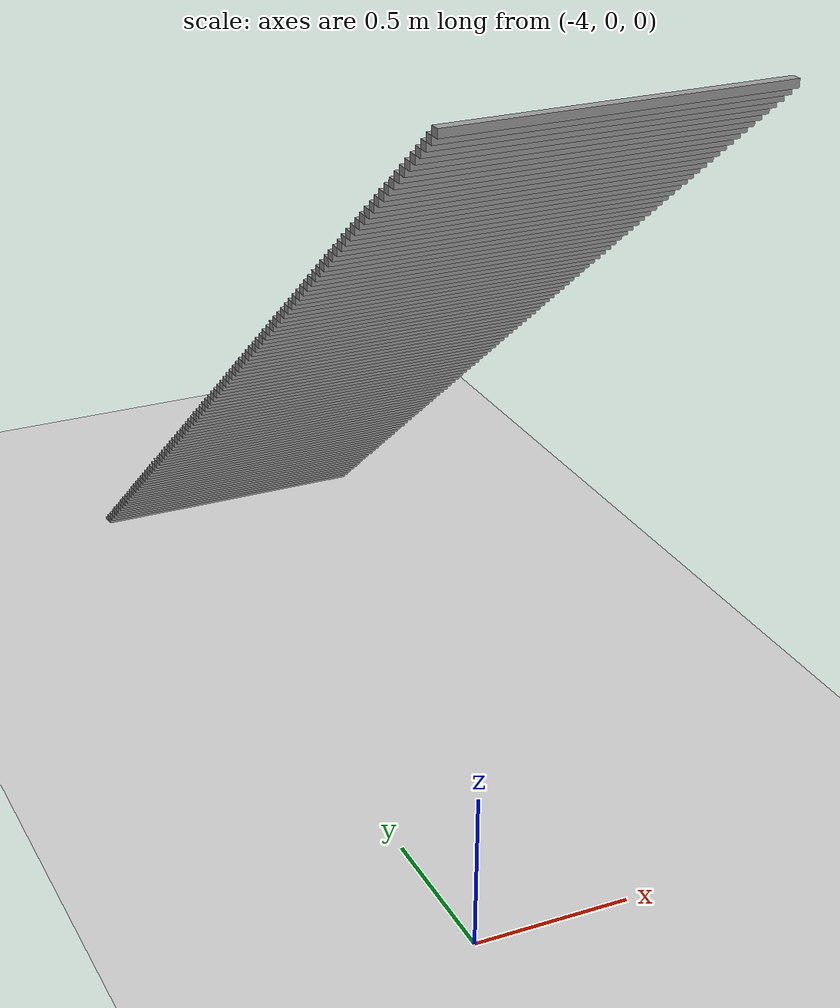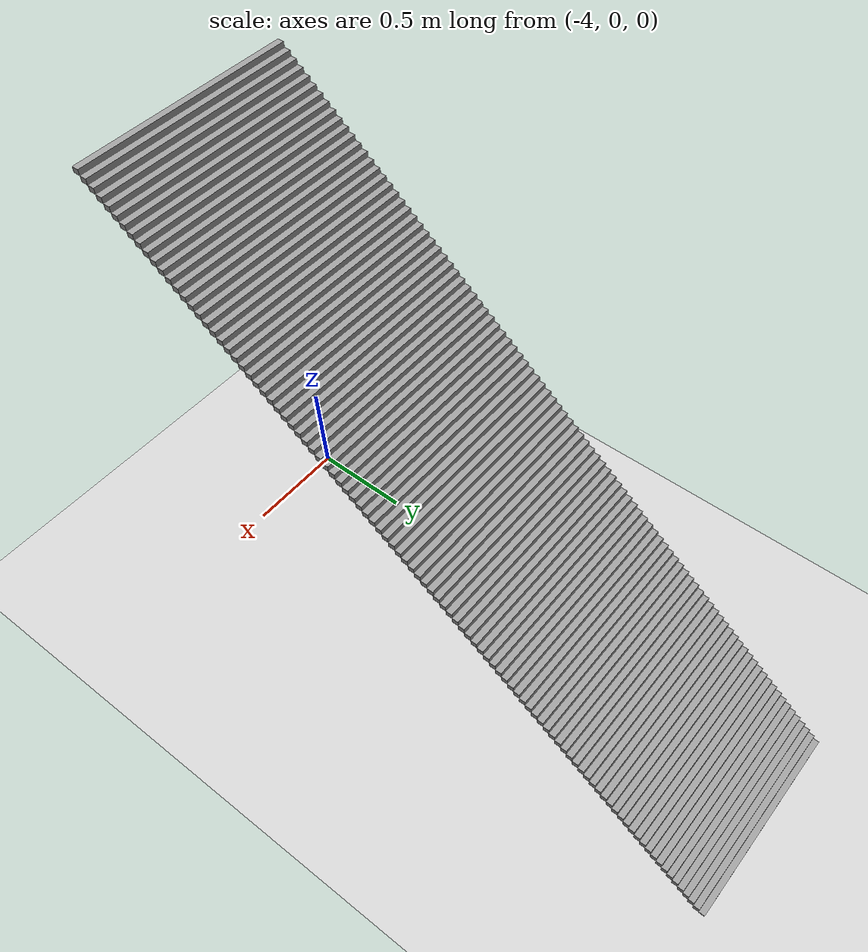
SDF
<sdf version="1.7">
 <world name="default">
  <model name="ground_plane">
   <static>1</static>
   <link name="link">
    <collision name="collision">
     <geometry><plane><normal>0 0 1</normal><size>100 100</size></plane></geometry>
     <surface>
      <contact><collide_bitmask>65535</collide_bitmask></contact>
      <friction><ode><mu>100</mu><mu2>50</mu2></ode></friction>
     </surface>
    </collision>
    <visual name="visual">
     <cast_shadows>0</cast_shadows>
     <geometry><plane><normal>0 0 1</normal><size>100 100</size></plane></geometry>
     <material>
      <script><uri>file://media/materials/scripts/gazebo.material</uri><name>Gazebo/Grey</name></script>
     </material>
    </visual>
   </link>
  </model>
  <model name="test2">
   <pose>0.709104 2.22387 -0.073744 0 -0 0</pose>
   <link name="Stairs_4">
    <visual name="Stairs_4_Visual_0">
     <pose>-4.35976 0.776132 0.0125 0 -0 0</pose>
     <geometry><box><size>1 0.03 0.025</size></box></geometry>
     <material>
      <script><uri>file://media/materials/scripts/gazebo.material</uri><name>Gazebo/Grey</name></script>
      <ambient>1 1 1 1</ambient>
     </material>
     <meta><layer>0</layer></meta>
    </visual>
    <collision name="Stairs_4_Collision_0">
     <geometry><box><size>1 0.03 0.025</size></box></geometry>
     <pose>-4.35976 0.776132 0.0125 0 -0 0</pose>
    </collision>
    <visual name="Stairs_4_Visual_1">
     <pose>-4.35976 0.746132 0.0375 0 -0 0</pose>
     <geometry><box><size>1 0.03 0.025</size></box></geometry>
     <material>
      <script><uri>file://media/materials/scripts/gazebo.material</uri><name>Gazebo/Grey</name></script>
      <ambient>1 1 1 1</ambient>
     </material>
     <meta><layer>0</layer></meta>
    </visual>
    <collision name="Stairs_4_Collision_1">
     <geometry><box><size>1 0.03 0.025</size></box></geometry>
     <pose>-4.35976 0.746132 0.0375 0 -0 0</pose>
    </collision>
    <visual name="Stairs_4_Visual_2">
     <pose>-4.35976 0.716132 0.0625 0 -0 0</pose>
     <geometry><box><size>1 0.03 0.025</size></box></geometry>
     <material>
      <script><uri>file://media/materials/scripts/gazebo.material</uri><name>Gazebo/Grey</name></script>
      <ambient>1 1 1 1</ambient>
     </material>
     <meta><layer>0</layer></meta>
    </visual>
    <collision name="Stairs_4_Collision_2">
     <geometry><box><size>1 0.03 0.025</size></box></geometry>
     <pose>-4.35976 0.716132 0.0625 0 -0 0</pose>
    </collision>
    <visual name="Stairs_4_Visual_3">
     <pose>-4.35976 0.686132 0.0875 0 -0 0</pose>
     <geometry><box><size>1 0.03 0.025</size></box></geometry>
     <material>
      <script><uri>file://media/materials/scripts/gazebo.material</uri><name>Gazebo/Grey</name></script>
      <ambient>1 1 1 1</ambient>
     </material>
     <meta><layer>0</layer></meta>
    </visual>
    <collision name="Stairs_4_Collision_3">
     <geometry><box><size>1 0.03 0.025</size></box></geometry>
     <pose>-4.35976 0.686132 0.0875 0 -0 0</pose>
    </collision>
    <visual name="Stairs_4_Visual_4">
     <pose>-4.35976 0.656132 0.1125 0 -0 0</pose>
     <geometry><box><size>1 0.03 0.025</size></box></geometry>
     <material>
      <script><uri>file://media/materials/scripts/gazebo.material</uri><name>Gazebo/Grey</name></script>
      <ambient>1 1 1 1</ambient>
     </material>
     <meta><layer>0</layer></meta>
    </visual>
    <collision name="Stairs_4_Collision_4">
     <geometry><box><size>1 0.03 0.025</size></box></geometry>
     <pose>-4.35976 0.656132 0.1125 0 -0 0</pose>
    </collision>
    <visual name="Stairs_4_Visual_5">
     <pose>-4.35976 0.626132 0.1375 0 -0 0</pose>
     <geometry><box><size>1 0.03 0.025</size></box></geometry>
     <material>
      <script><uri>file://media/materials/scripts/gazebo.material</uri><name>Gazebo/Grey</name></script>
      <ambient>1 1 1 1</ambient>
     </material>
     <meta><layer>0</layer></meta>
    </visual>
    <collision name="Stairs_4_Collision_5">
     <geometry><box><size>1 0.03 0.025</size></box></geometry>
     <pose>-4.35976 0.626132 0.1375 0 -0 0</pose>
    </collision>
    <visual name="Stairs_4_Visual_6">
     <pose>-4.35976 0.596132 0.1625 0 -0 0</pose>
     <geometry><box><size>1 0.03 0.025</size></box></geometry>
     <material>
      <script><uri>file://media/materials/scripts/gazebo.material</uri><name>Gazebo/Grey</name></script>
      <ambient>1 1 1 1</ambient>
     </material>
     <meta><layer>0</layer></meta>
    </visual>
    <collision name="Stairs_4_Collision_6">
     <geometry><box><size>1 0.03 0.025</size></box></geometry>
     <pose>-4.35976 0.596132 0.1625 0 -0 0</pose>
    </collision>
    <visual name="Stairs_4_Visual_7">
     <pose>-4.35976 0.566132 0.1875 0 -0 0</pose>
     <geometry><box><size>1 0.03 0.025</size></box></geometry>
     <material>
      <script><uri>file://media/materials/scripts/gazebo.material</uri><name>Gazebo/Grey</name></script>
      <ambient>1 1 1 1</ambient>
     </material>
     <meta><layer>0</layer></meta>
    </visual>
    <collision name="Stairs_4_Collision_7">
     <geometry><box><size>1 0.03 0.025</size></box></geometry>
     <pose>-4.35976 0.566132 0.1875 0 -0 0</pose>
    </collision>
    <visual name="Stairs_4_Visual_8">
     <pose>-4.35976 0.536132 0.2125 0 -0 0</pose>
     <geometry><box><size>1 0.03 0.025</size></box></geometry>
     <material>
      <script><uri>file://media/materials/scripts/gazebo.material</uri><name>Gazebo/Grey</name></script>
      <ambient>1 1 1 1</ambient>
     </material>
     <meta><layer>0</layer></meta>
    </visual>
    <collision name="Stairs_4_Collision_8">
     <geometry><box><size>1 0.03 0.025</size></box></geometry>
     <pose>-4.35976 0.536132 0.2125 0 -0 0</pose>
    </collision>
    <visual name="Stairs_4_Visual_9">
     <pose>-4.35976 0.506132 0.2375 0 -0 0</pose>
     <geometry><box><size>1 0.03 0.025</size></box></geometry>
     <material>
      <script><uri>file://media/materials/scripts/gazebo.material</uri><name>Gazebo/Grey</name></script>
      <ambient>1 1 1 1</ambient>
     </material>
     <meta><layer>0</layer></meta>
    </visual>
    <collision name="Stairs_4_Collision_9">
     <geometry><box><size>1 0.03 0.025</size></box></geometry>
     <pose>-4.35976 0.506132 0.2375 0 -0 0</pose>
    </collision>
    <visual name="Stairs_4_Visual_10">
     <pose>-4.35976 0.476132 0.2625 0 -0 0</pose>
     <geometry><box><size>1 0.03 0.025</size></box></geometry>
     <material>
      <script><uri>file://media/materials/scripts/gazebo.material</uri><name>Gazebo/Grey</name></script>
      <ambient>1 1 1 1</ambient>
     </material>
     <meta><layer>0</layer></meta>
    </visual>
    <collision name="Stairs_4_Collision_10">
     <geometry><box><size>1 0.03 0.025</size></box></geometry>
     <pose>-4.35976 0.476132 0.2625 0 -0 0</pose>
    </collision>
    <visual name="Stairs_4_Visual_11">
     <pose>-4.35976 0.446132 0.2875 0 -0 0</pose>
     <geometry><box><size>1 0.03 0.025</size></box></geometry>
     <material>
      <script><uri>file://media/materials/scripts/gazebo.material</uri><name>Gazebo/Grey</name></script>
      <ambient>1 1 1 1</ambient>
     </material>
     <meta><layer>0</layer></meta>
    </visual>
    <collision name="Stairs_4_Collision_11">
     <geometry><box><size>1 0.03 0.025</size></box></geometry>
     <pose>-4.35976 0.446132 0.2875 0 -0 0</pose>
    </collision>
    <visual name="Stairs_4_Visual_12">
     <pose>-4.35976 0.416132 0.3125 0 -0 0</pose>
     <geometry><box><size>1 0.03 0.025</size></box></geometry>
     <material>
      <script><uri>file://media/materials/scripts/gazebo.material</uri><name>Gazebo/Grey</name></script>
      <ambient>1 1 1 1</ambient>
     </material>
     <meta><layer>0</layer></meta>
    </visual>
    <collision name="Stairs_4_Collision_12">
     <geometry><box><size>1 0.03 0.025</size></box></geometry>
     <pose>-4.35976 0.416132 0.3125 0 -0 0</pose>
    </collision>
    <visual name="Stairs_4_Visual_13">
     <pose>-4.35976 0.386132 0.3375 0 -0 0</pose>
     <geometry><box><size>1 0.03 0.025</size></box></geometry>
     <material>
      <script><uri>file://media/materials/scripts/gazebo.material</uri><name>Gazebo/Grey</name></script>
      <ambient>1 1 1 1</ambient>
     </material>
     <meta><layer>0</layer></meta>
    </visual>
    <collision name="Stairs_4_Collision_13">
     <geometry><box><size>1 0.03 0.025</size></box></geometry>
     <pose>-4.35976 0.386132 0.3375 0 -0 0</pose>
    </collision>
    <visual name="Stairs_4_Visual_14">
     <pose>-4.35976 0.356132 0.3625 0 -0 0</pose>
     <geometry><box><size>1 0.03 0.025</size></box></geometry>
     <material>
      <script><uri>file://media/materials/scripts/gazebo.material</uri><name>Gazebo/Grey</name></script>
      <ambient>1 1 1 1</ambient>
     </material>
     <meta><layer>0</layer></meta>
    </visual>
    <collision name="Stairs_4_Collision_14">
     <geometry><box><size>1 0.03 0.025</size></box></geometry>
     <pose>-4.35976 0.356132 0.3625 0 -0 0</pose>
    </collision>
    <visual name="Stairs_4_Visual_15">
     <pose>-4.35976 0.326132 0.3875 0 -0 0</pose>
     <geometry><box><size>1 0.03 0.025</size></box></geometry>
     <material>
      <script><uri>file://media/materials/scripts/gazebo.material</uri><name>Gazebo/Grey</name></script>
      <ambient>1 1 1 1</ambient>
     </material>
     <meta><layer>0</layer></meta>
    </visual>
    <collision name="Stairs_4_Collision_15">
     <geometry><box><size>1 0.03 0.025</size></box></geometry>
     <pose>-4.35976 0.326132 0.3875 0 -0 0</pose>
    </collision>
    <visual name="Stairs_4_Visual_16">
     <pose>-4.35976 0.296132 0.4125 0 -0 0</pose>
     <geometry><box><size>1 0.03 0.025</size></box></geometry>
     <material>
      <script><uri>file://media/materials/scripts/gazebo.material</uri><name>Gazebo/Grey</name></script>
      <ambient>1 1 1 1</ambient>
     </material>
     <meta><layer>0</layer></meta>
    </visual>
    <collision name="Stairs_4_Collision_16">
     <geometry><box><size>1 0.03 0.025</size></box></geometry>
     <pose>-4.35976 0.296132 0.4125 0 -0 0</pose>
    </collision>
    <visual name="Stairs_4_Visual_17">
     <pose>-4.35976 0.266132 0.4375 0 -0 0</pose>
     <geometry><box><size>1 0.03 0.025</size></box></geometry>
     <material>
      <script><uri>file://media/materials/scripts/gazebo.material</uri><name>Gazebo/Grey</name></script>
      <ambient>1 1 1 1</ambient>
     </material>
     <meta><layer>0</layer></meta>
    </visual>
    <collision name="Stairs_4_Collision_17">
     <geometry><box><size>1 0.03 0.025</size></box></geometry>
     <pose>-4.35976 0.266132 0.4375 0 -0 0</pose>
    </collision>
    <visual name="Stairs_4_Visual_18">
     <pose>-4.35976 0.236132 0.4625 0 -0 0</pose>
     <geometry><box><size>1 0.03 0.025</size></box></geometry>
     <material>
      <script><uri>file://media/materials/scripts/gazebo.material</uri><name>Gazebo/Grey</name></script>
      <ambient>1 1 1 1</ambient>
     </material>
     <meta><layer>0</layer></meta>
    </visual>
    <collision name="Stairs_4_Collision_18">
     <geometry><box><size>1 0.03 0.025</size></box></geometry>
     <pose>-4.35976 0.236132 0.4625 0 -0 0</pose>
    </collision>
    <visual name="Stairs_4_Visual_19">
     <pose>-4.35976 0.206132 0.4875 0 -0 0</pose>
     <geometry><box><size>1 0.03 0.025</size></box></geometry>
     <material>
      <script><uri>file://media/materials/scripts/gazebo.material</uri><name>Gazebo/Grey</name></script>
      <ambient>1 1 1 1</ambient>
     </material>
     <meta><layer>0</layer></meta>
    </visual>
    <collision name="Stairs_4_Collision_19">
     <geometry><box><size>1 0.03 0.025</size></box></geometry>
     <pose>-4.35976 0.206132 0.4875 0 -0 0</pose>
    </collision>
    <visual name="Stairs_4_Visual_20">
     <pose>-4.35976 0.176132 0.5125 0 -0 0</pose>
     <geometry><box><size>1 0.03 0.025</size></box></geometry>
     <material>
      <script><uri>file://media/materials/scripts/gazebo.material</uri><name>Gazebo/Grey</name></script>
      <ambient>1 1 1 1</ambient>
     </material>
     <meta><layer>0</layer></meta>
    </visual>
    <collision name="Stairs_4_Collision_20">
     <geometry><box><size>1 0.03 0.025</size></box></geometry>
     <pose>-4.35976 0.176132 0.5125 0 -0 0</pose>
    </collision>
    <visual name="Stairs_4_Visual_21">
     <pose>-4.35976 0.146132 0.5375 0 -0 0</pose>
     <geometry><box><size>1 0.03 0.025</size></box></geometry>
     <material>
      <script><uri>file://media/materials/scripts/gazebo.material</uri><name>Gazebo/Grey</name></script>
      <ambient>1 1 1 1</ambient>
     </material>
     <meta><layer>0</layer></meta>
    </visual>
    <collision name="Stairs_4_Collision_21">
     <geometry><box><size>1 0.03 0.025</size></box></geometry>
     <pose>-4.35976 0.146132 0.5375 0 -0 0</pose>
    </collision>
    <visual name="Stairs_4_Visual_22">
     <pose>-4.35976 0.116132 0.5625 0 -0 0</pose>
     <geometry><box><size>1 0.03 0.025</size></box></geometry>
     <material>
      <script><uri>file://media/materials/scripts/gazebo.material</uri><name>Gazebo/Grey</name></script>
      <ambient>1 1 1 1</ambient>
     </material>
     <meta><layer>0</layer></meta>
    </visual>
    <collision name="Stairs_4_Collision_22">
     <geometry><box><size>1 0.03 0.025</size></box></geometry>
     <pose>-4.35976 0.116132 0.5625 0 -0 0</pose>
    </collision>
    <visual name="Stairs_4_Visual_23">
     <pose>-4.35976 0.086132 0.5875 0 -0 0</pose>
     <geometry><box><size>1 0.03 0.025</size></box></geometry>
     <material>
      <script><uri>file://media/materials/scripts/gazebo.material</uri><name>Gazebo/Grey</name></script>
      <ambient>1 1 1 1</ambient>
     </material>
     <meta><layer>0</layer></meta>
    </visual>
    <collision name="Stairs_4_Collision_23">
     <geometry><box><size>1 0.03 0.025</size></box></geometry>
     <pose>-4.35976 0.086132 0.5875 0 -0 0</pose>
    </collision>
    <visual name="Stairs_4_Visual_24">
     <pose>-4.35976 0.056132 0.6125 0 -0 0</pose>
     <geometry><box><size>1 0.03 0.025</size></box></geometry>
     <material>
      <script><uri>file://media/materials/scripts/gazebo.material</uri><name>Gazebo/Grey</name></script>
      <ambient>1 1 1 1</ambient>
     </material>
     <meta><layer>0</layer></meta>
    </visual>
    <collision name="Stairs_4_Collision_24">
     <geometry><box><size>1 0.03 0.025</size></box></geometry>
     <pose>-4.35976 0.056132 0.6125 0 -0 0</pose>
    </collision>
    <visual name="Stairs_4_Visual_25">
     <pose>-4.35976 0.026132 0.6375 0 -0 0</pose>
     <geometry><box><size>1 0.03 0.025</size></box></geometry>
     <material>
      <script><uri>file://media/materials/scripts/gazebo.material</uri><name>Gazebo/Grey</name></script>
      <ambient>1 1 1 1</ambient>
     </material>
     <meta><layer>0</layer></meta>
    </visual>
    <collision name="Stairs_4_Collision_25">
     <geometry><box><size>1 0.03 0.025</size></box></geometry>
     <pose>-4.35976 0.026132 0.6375 0 -0 0</pose>
    </collision>
    <visual name="Stairs_4_Visual_26">
     <pose>-4.35976 -0.003868 0.6625 0 -0 0</pose>
     <geometry><box><size>1 0.03 0.025</size></box></geometry>
     <material>
      <script><uri>file://media/materials/scripts/gazebo.material</uri><name>Gazebo/Grey</name></script>
      <ambient>1 1 1 1</ambient>
     </material>
     <meta><layer>0</layer></meta>
    </visual>
    <collision name="Stairs_4_Collision_26">
     <geometry><box><size>1 0.03 0.025</size></box></geometry>
     <pose>-4.35976 -0.003868 0.6625 0 -0 0</pose>
    </collision>
    <visual name="Stairs_4_Visual_27">
     <pose>-4.35976 -0.033868 0.6875 0 -0 0</pose>
     <geometry><box><size>1 0.03 0.025</size></box></geometry>
     <material>
      <script><uri>file://media/materials/scripts/gazebo.material</uri><name>Gazebo/Grey</name></script>
      <ambient>1 1 1 1</ambient>
     </material>
     <meta><layer>0</layer></meta>
    </visual>
    <collision name="Stairs_4_Collision_27">
     <geometry><box><size>1 0.03 0.025</size></box></geometry>
     <pose>-4.35976 -0.033868 0.6875 0 -0 0</pose>
    </collision>
    <visual name="Stairs_4_Visual_28">
     <pose>-4.35976 -0.063868 0.7125 0 -0 0</pose>
     <geometry><box><size>1 0.03 0.025</size></box></geometry>
     <material>
      <script><uri>file://media/materials/scripts/gazebo.material</uri><name>Gazebo/Grey</name></script>
      <ambient>1 1 1 1</ambient>
     </material>
     <meta><layer>0</layer></meta>
    </visual>
    <collision name="Stairs_4_Collision_28">
     <geometry><box><size>1 0.03 0.025</size></box></geometry>
     <pose>-4.35976 -0.063868 0.7125 0 -0 0</pose>
    </collision>
    <visual name="Stairs_4_Visual_29">
     <pose>-4.35976 -0.093868 0.7375 0 -0 0</pose>
     <geometry><box><size>1 0.03 0.025</size></box></geometry>
     <material>
      <script><uri>file://media/materials/scripts/gazebo.material</uri><name>Gazebo/Grey</name></script>
      <ambient>1 1 1 1</ambient>
     </material>
     <meta><layer>0</layer></meta>
    </visual>
    <collision name="Stairs_4_Collision_29">
     <geometry><box><size>1 0.03 0.025</size></box></geometry>
     <pose>-4.35976 -0.093868 0.7375 0 -0 0</pose>
    </collision>
    <visual name="Stairs_4_Visual_30">
     <pose>-4.35976 -0.123868 0.7625 0 -0 0</pose>
     <geometry><box><size>1 0.03 0.025</size></box></geometry>
     <material>
      <script><uri>file://media/materials/scripts/gazebo.material</uri><name>Gazebo/Grey</name></script>
      <ambient>1 1 1 1</ambient>
     </material>
     <meta><layer>0</layer></meta>
    </visual>
    <collision name="Stairs_4_Collision_30">
     <geometry><box><size>1 0.03 0.025</size></box></geometry>
     <pose>-4.35976 -0.123868 0.7625 0 -0 0</pose>
    </collision>
    <visual name="Stairs_4_Visual_31">
     <pose>-4.35976 -0.153868 0.7875 0 -0 0</pose>
     <geometry><box><size>1 0.03 0.025</size></box></geometry>
     <material>
      <script><uri>file://media/materials/scripts/gazebo.material</uri><name>Gazebo/Grey</name></script>
      <ambient>1 1 1 1</ambient>
     </material>
     <meta><layer>0</layer></meta>
    </visual>
    <collision name="Stairs_4_Collision_31">
     <geometry><box><size>1 0.03 0.025</size></box></geometry>
     <pose>-4.35976 -0.153868 0.7875 0 -0 0</pose>
    </collision>
    <visual name="Stairs_4_Visual_32">
     <pose>-4.35976 -0.183868 0.8125 0 -0 0</pose>
     <geometry><box><size>1 0.03 0.025</size></box></geometry>
     <material>
      <script><uri>file://media/materials/scripts/gazebo.material</uri><name>Gazebo/Grey</name></script>
      <ambient>1 1 1 1</ambient>
     </material>
     <meta><layer>0</layer></meta>
    </visual>
    <collision name="Stairs_4_Collision_32">
     <geometry><box><size>1 0.03 0.025</size></box></geometry>
     <pose>-4.35976 -0.183868 0.8125 0 -0 0</pose>
    </collision>
    <visual name="Stairs_4_Visual_33">
     <pose>-4.35976 -0.213868 0.8375 0 -0 0</pose>
     <geometry><box><size>1 0.03 0.025</size></box></geometry>
     <material>
      <script><uri>file://media/materials/scripts/gazebo.material</uri><name>Gazebo/Grey</name></script>
      <ambient>1 1 1 1</ambient>
     </material>
     <meta><layer>0</layer></meta>
    </visual>
    <collision name="Stairs_4_Collision_33">
     <geometry><box><size>1 0.03 0.025</size></box></geometry>
     <pose>-4.35976 -0.213868 0.8375 0 -0 0</pose>
    </collision>
    <visual name="Stairs_4_Visual_34">
     <pose>-4.35976 -0.243868 0.8625 0 -0 0</pose>
     <geometry><box><size>1 0.03 0.025</size></box></geometry>
     <material>
      <script><uri>file://media/materials/scripts/gazebo.material</uri><name>Gazebo/Grey</name></script>
      <ambient>1 1 1 1</ambient>
     </material>
     <meta><layer>0</layer></meta>
    </visual>
    <collision name="Stairs_4_Collision_34">
     <geometry><box><size>1 0.03 0.025</size></box></geometry>
     <pose>-4.35976 -0.243868 0.8625 0 -0 0</pose>
    </collision>
    <visual name="Stairs_4_Visual_35">
     <pose>-4.35976 -0.273868 0.8875 0 -0 0</pose>
     <geometry><box><size>1 0.03 0.025</size></box></geometry>
     <material>
      <script><uri>file://media/materials/scripts/gazebo.material</uri><name>Gazebo/Grey</name></script>
      <ambient>1 1 1 1</ambient>
     </material>
     <meta><layer>0</layer></meta>
    </visual>
    <collision name="Stairs_4_Collision_35">
     <geometry><box><size>1 0.03 0.025</size></box></geometry>
     <pose>-4.35976 -0.273868 0.8875 0 -0 0</pose>
    </collision>
    <visual name="Stairs_4_Visual_36">
     <pose>-4.35976 -0.303868 0.9125 0 -0 0</pose>
     <geometry><box><size>1 0.03 0.025</size></box></geometry>
     <material>
      <script><uri>file://media/materials/scripts/gazebo.material</uri><name>Gazebo/Grey</name></script>
      <ambient>1 1 1 1</ambient>
     </material>
     <meta><layer>0</layer></meta>
    </visual>
    <collision name="Stairs_4_Collision_36">
     <geometry><box><size>1 0.03 0.025</size></box></geometry>
     <pose>-4.35976 -0.303868 0.9125 0 -0 0</pose>
    </collision>
    <visual name="Stairs_4_Visual_37">
     <pose>-4.35976 -0.333868 0.9375 0 -0 0</pose>
     <geometry><box><size>1 0.03 0.025</size></box></geometry>
     <material>
      <script><uri>file://media/materials/scripts/gazebo.material</uri><name>Gazebo/Grey</name></script>
      <ambient>1 1 1 1</ambient>
     </material>
     <meta><layer>0</layer></meta>
    </visual>
    <collision name="Stairs_4_Collision_37">
     <geometry><box><size>1 0.03 0.025</size></box></geometry>
     <pose>-4.35976 -0.333868 0.9375 0 -0 0</pose>
    </collision>
    <visual name="Stairs_4_Visual_38">
     <pose>-4.35976 -0.363868 0.9625 0 -0 0</pose>
     <geometry><box><size>1 0.03 0.025</size></box></geometry>
     <material>
      <script><uri>file://media/materials/scripts/gazebo.material</uri><name>Gazebo/Grey</name></script>
      <ambient>1 1 1 1</ambient>
     </material>
     <meta><layer>0</layer></meta>
    </visual>
    <collision name="Stairs_4_Collision_38">
     <geometry><box><size>1 0.03 0.025</size></box></geometry>
     <pose>-4.35976 -0.363868 0.9625 0 -0 0</pose>
    </collision>
    <visual name="Stairs_4_Visual_39">
     <pose>-4.35976 -0.393868 0.9875 0 -0 0</pose>
     <geometry><box><size>1 0.03 0.025</size></box></geometry>
     <material>
      <script><uri>file://media/materials/scripts/gazebo.material</uri><name>Gazebo/Grey</name></script>
      <ambient>1 1 1 1</ambient>
     </material>
     <meta><layer>0</layer></meta>
    </visual>
    <collision name="Stairs_4_Collision_39">
     <geometry><box><size>1 0.03 0.025</size></box></geometry>
     <pose>-4.35976 -0.393868 0.9875 0 -0 0</pose>
    </collision>
    <visual name="Stairs_4_Visual_40">
     <pose>-4.35976 -0.423868 1.0125 0 -0 0</pose>
     <geometry><box><size>1 0.03 0.025</size></box></geometry>
     <material>
      <script><uri>file://media/materials/scripts/gazebo.material</uri><name>Gazebo/Grey</name></script>
      <ambient>1 1 1 1</ambient>
     </material>
     <meta><layer>0</layer></meta>
    </visual>
    <collision name="Stairs_4_Collision_40">
     <geometry><box><size>1 0.03 0.025</size></box></geometry>
     <pose>-4.35976 -0.423868 1.0125 0 -0 0</pose>
    </collision>
    <visual name="Stairs_4_Visual_41">
     <pose>-4.35976 -0.453868 1.0375 0 -0 0</pose>
     <geometry><box><size>1 0.03 0.025</size></box></geometry>
     <material>
      <script><uri>file://media/materials/scripts/gazebo.material</uri><name>Gazebo/Grey</name></script>
      <ambient>1 1 1 1</ambient>
     </material>
     <meta><layer>0</layer></meta>
    </visual>
    <collision name="Stairs_4_Collision_41">
     <geometry><box><size>1 0.03 0.025</size></box></geometry>
     <pose>-4.35976 -0.453868 1.0375 0 -0 0</pose>
    </collision>
    <visual name="Stairs_4_Visual_42">
     <pose>-4.35976 -0.483868 1.0625 0 -0 0</pose>
     <geometry><box><size>1 0.03 0.025</size></box></geometry>
     <material>
      <script><uri>file://media/materials/scripts/gazebo.material</uri><name>Gazebo/Grey</name></script>
      <ambient>1 1 1 1</ambient>
     </material>
     <meta><layer>0</layer></meta>
    </visual>
    <collision name="Stairs_4_Collision_42">
     <geometry><box><size>1 0.03 0.025</size></box></geometry>
     <pose>-4.35976 -0.483868 1.0625 0 -0 0</pose>
    </collision>
    <visual name="Stairs_4_Visual_43">
     <pose>-4.35976 -0.513868 1.0875 0 -0 0</pose>
     <geometry><box><size>1 0.03 0.025</size></box></geometry>
     <material>
      <script><uri>file://media/materials/scripts/gazebo.material</uri><name>Gazebo/Grey</name></script>
      <ambient>1 1 1 1</ambient>
     </material>
     <meta><layer>0</layer></meta>
    </visual>
    <collision name="Stairs_4_Collision_43">
     <geometry><box><size>1 0.03 0.025</size></box></geometry>
     <pose>-4.35976 -0.513868 1.0875 0 -0 0</pose>
    </collision>
    <visual name="Stairs_4_Visual_44">
     <pose>-4.35976 -0.543868 1.1125 0 -0 0</pose>
     <geometry><box><size>1 0.03 0.025</size></box></geometry>
     <material>
      <script><uri>file://media/materials/scripts/gazebo.material</uri><name>Gazebo/Grey</name></script>
      <ambient>1 1 1 1</ambient>
     </material>
     <meta><layer>0</layer></meta>
    </visual>
    <collision name="Stairs_4_Collision_44">
     <geometry><box><size>1 0.03 0.025</size></box></geometry>
     <pose>-4.35976 -0.543868 1.1125 0 -0 0</pose>
    </collision>
    <visual name="Stairs_4_Visual_45">
     <pose>-4.35976 -0.573868 1.1375 0 -0 0</pose>
     <geometry><box><size>1 0.03 0.025</size></box></geometry>
     <material>
      <script><uri>file://media/materials/scripts/gazebo.material</uri><name>Gazebo/Grey</name></script>
      <ambient>1 1 1 1</ambient>
     </material>
     <meta><layer>0</layer></meta>
    </visual>
    <collision name="Stairs_4_Collision_45">
     <geometry><box><size>1 0.03 0.025</size></box></geometry>
     <pose>-4.35976 -0.573868 1.1375 0 -0 0</pose>
    </collision>
    <visual name="Stairs_4_Visual_46">
     <pose>-4.35976 -0.603868 1.1625 0 -0 0</pose>
     <geometry><box><size>1 0.03 0.025</size></box></geometry>
     <material>
      <script><uri>file://media/materials/scripts/gazebo.material</uri><name>Gazebo/Grey</name></script>
      <ambient>1 1 1 1</ambient>
     </material>
     <meta><layer>0</layer></meta>
    </visual>
    <collision name="Stairs_4_Collision_46">
     <geometry><box><size>1 0.03 0.025</size></box></geometry>
     <pose>-4.35976 -0.603868 1.1625 0 -0 0</pose>
    </collision>
    <visual name="Stairs_4_Visual_47">
     <pose>-4.35976 -0.633868 1.1875 0 -0 0</pose>
     <geometry><box><size>1 0.03 0.025</size></box></geometry>
     <material>
      <script><uri>file://media/materials/scripts/gazebo.material</uri><name>Gazebo/Grey</name></script>
      <ambient>1 1 1 1</ambient>
     </material>
     <meta><layer>0</layer></meta>
    </visual>
    <collision name="Stairs_4_Collision_47">
     <geometry><box><size>1 0.03 0.025</size></box></geometry>
     <pose>-4.35976 -0.633868 1.1875 0 -0 0</pose>
    </collision>
    <visual name="Stairs_4_Visual_48">
     <pose>-4.35976 -0.663868 1.2125 0 -0 0</pose>
     <geometry><box><size>1 0.03 0.025</size></box></geometry>
     <material>
      <script><uri>file://media/materials/scripts/gazebo.material</uri><name>Gazebo/Grey</name></script>
      <ambient>1 1 1 1</ambient>
     </material>
     <meta><layer>0</layer></meta>
    </visual>
    <collision name="Stairs_4_Collision_48">
     <geometry><box><size>1 0.03 0.025</size></box></geometry>
     <pose>-4.35976 -0.663868 1.2125 0 -0 0</pose>
    </collision>
    <visual name="Stairs_4_Visual_49">
     <pose>-4.35976 -0.693868 1.2375 0 -0 0</pose>
     <geometry><box><size>1 0.03 0.025</size></box></geometry>
     <material>
      <script><uri>file://media/materials/scripts/gazebo.material</uri><name>Gazebo/Grey</name></script>
      <ambient>1 1 1 1</ambient>
     </material>
     <meta><layer>0</layer></meta>
    </visual>
    <collision name="Stairs_4_Collision_49">
     <geometry><box><size>1 0.03 0.025</size></box></geometry>
     <pose>-4.35976 -0.693868 1.2375 0 -0 0</pose>
    </collision>
    <visual name="Stairs_4_Visual_50">
     <pose>-4.35976 -0.723868 1.2625 0 -0 0</pose>
     <geometry><box><size>1 0.03 0.025</size></box></geometry>
     <material>
      <script><uri>file://media/materials/scripts/gazebo.material</uri><name>Gazebo/Grey</name></script>
      <ambient>1 1 1 1</ambient>
     </material>
     <meta><layer>0</layer></meta>
    </visual>
    <collision name="Stairs_4_Collision_50">
     <geometry><box><size>1 0.03 0.025</size></box></geometry>
     <pose>-4.35976 -0.723868 1.2625 0 -0 0</pose>
    </collision>
    <visual name="Stairs_4_Visual_51">
     <pose>-4.35976 -0.753868 1.2875 0 -0 0</pose>
     <geometry><box><size>1 0.03 0.025</size></box></geometry>
     <material>
      <script><uri>file://media/materials/scripts/gazebo.material</uri><name>Gazebo/Grey</name></script>
      <ambient>1 1 1 1</ambient>
     </material>
     <meta><layer>0</layer></meta>
    </visual>
    <collision name="Stairs_4_Collision_51">
     <geometry><box><size>1 0.03 0.025</size></box></geometry>
     <pose>-4.35976 -0.753868 1.2875 0 -0 0</pose>
    </collision>
    <visual name="Stairs_4_Visual_52">
     <pose>-4.35976 -0.783868 1.3125 0 -0 0</pose>
     <geometry><box><size>1 0.03 0.025</size></box></geometry>
     <material>
      <script><uri>file://media/materials/scripts/gazebo.material</uri><name>Gazebo/Grey</name></script>
      <ambient>1 1 1 1</ambient>
     </material>
     <meta><layer>0</layer></meta>
    </visual>
    <collision name="Stairs_4_Collision_52">
     <geometry><box><size>1 0.03 0.025</size></box></geometry>
     <pose>-4.35976 -0.783868 1.3125 0 -0 0</pose>
    </collision>
    <visual name="Stairs_4_Visual_53">
     <pose>-4.35976 -0.813868 1.3375 0 -0 0</pose>
     <geometry><box><size>1 0.03 0.025</size></box></geometry>
     <material>
      <script><uri>file://media/materials/scripts/gazebo.material</uri><name>Gazebo/Grey</name></script>
      <ambient>1 1 1 1</ambient>
     </material>
     <meta><layer>0</layer></meta>
    </visual>
    <collision name="Stairs_4_Collision_53">
     <geometry><box><size>1 0.03 0.025</size></box></geometry>
     <pose>-4.35976 -0.813868 1.3375 0 -0 0</pose>
    </collision>
    <visual name="Stairs_4_Visual_54">
     <pose>-4.35976 -0.843868 1.3625 0 -0 0</pose>
     <geometry><box><size>1 0.03 0.025</size></box></geometry>
     <material>
      <script><uri>file://media/materials/scripts/gazebo.material</uri><name>Gazebo/Grey</name></script>
      <ambient>1 1 1 1</ambient>
     </material>
     <meta><layer>0</layer></meta>
    </visual>
    <collision name="Stairs_4_Collision_54">
     <geometry><box><size>1 0.03 0.025</size></box></geometry>
     <pose>-4.35976 -0.843868 1.3625 0 -0 0</pose>
    </collision>
    <visual name="Stairs_4_Visual_55">
     <pose>-4.35976 -0.873868 1.3875 0 -0 0</pose>
     <geometry><box><size>1 0.03 0.025</size></box></geometry>
     <material>
      <script><uri>file://media/materials/scripts/gazebo.material</uri><name>Gazebo/Grey</name></script>
      <ambient>1 1 1 1</ambient>
     </material>
     <meta><layer>0</layer></meta>
    </visual>
    <collision name="Stairs_4_Collision_55">
     <geometry><box><size>1 0.03 0.025</size></box></geometry>
     <pose>-4.35976 -0.873868 1.3875 0 -0 0</pose>
    </collision>
    <visual name="Stairs_4_Visual_56">
     <pose>-4.35976 -0.903868 1.4125 0 -0 0</pose>
     <geometry><box><size>1 0.03 0.025</size></box></geometry>
     <material>
      <script><uri>file://media/materials/scripts/gazebo.material</uri><name>Gazebo/Grey</name></script>
      <ambient>1 1 1 1</ambient>
     </material>
     <meta><layer>0</layer></meta>
    </visual>
    <collision name="Stairs_4_Collision_56">
     <geometry><box><size>1 0.03 0.025</size></box></geometry>
     <pose>-4.35976 -0.903868 1.4125 0 -0 0</pose>
    </collision>
    <visual name="Stairs_4_Visual_57">
     <pose>-4.35976 -0.933868 1.4375 0 -0 0</pose>
     <geometry><box><size>1 0.03 0.025</size></box></geometry>
     <material>
      <script><uri>file://media/materials/scripts/gazebo.material</uri><name>Gazebo/Grey</name></script>
      <ambient>1 1 1 1</ambient>
     </material>
     <meta><layer>0</layer></meta>
    </visual>
    <collision name="Stairs_4_Collision_57">
     <geometry><box><size>1 0.03 0.025</size></box></geometry>
     <pose>-4.35976 -0.933868 1.4375 0 -0 0</pose>
    </collision>
    <visual name="Stairs_4_Visual_58">
     <pose>-4.35976 -0.963868 1.4625 0 -0 0</pose>
     <geometry><box><size>1 0.03 0.025</size></box></geometry>
     <material>
      <script><uri>file://media/materials/scripts/gazebo.material</uri><name>Gazebo/Grey</name></script>
      <ambient>1 1 1 1</ambient>
     </material>
     <meta><layer>0</layer></meta>
    </visual>
    <collision name="Stairs_4_Collision_58">
     <geometry><box><size>1 0.03 0.025</size></box></geometry>
     <pose>-4.35976 -0.963868 1.4625 0 -0 0</pose>
    </collision>
    <visual name="Stairs_4_Visual_59">
     <pose>-4.35976 -0.993868 1.4875 0 -0 0</pose>
     <geometry><box><size>1 0.03 0.025</size></box></geometry>
     <material>
      <script><uri>file://media/materials/scripts/gazebo.material</uri><name>Gazebo/Grey</name></script>
      <ambient>1 1 1 1</ambient>
     </material>
     <meta><layer>0</layer></meta>
    </visual>
    <collision name="Stairs_4_Collision_59">
     <geometry><box><size>1 0.03 0.025</size></box></geometry>
     <pose>-4.35976 -0.993868 1.4875 0 -0 0</pose>
    </collision>
    <visual name="Stairs_4_Visual_60">
     <pose>-4.35976 -1.02387 1.5125 0 -0 0</pose>
     <geometry><box><size>1 0.03 0.025</size></box></geometry>
     <material>
      <script><uri>file://media/materials/scripts/gazebo.material</uri><name>Gazebo/Grey</name></script>
      <ambient>1 1 1 1</ambient>
     </material>
     <meta><layer>0</layer></meta>
    </visual>
    <collision name="Stairs_4_Collision_60">
     <geometry><box><size>1 0.03 0.025</size></box></geometry>
     <pose>-4.35976 -1.02387 1.5125 0 -0 0</pose>
    </collision>
    <visual name="Stairs_4_Visual_61">
     <pose>-4.35976 -1.05387 1.5375 0 -0 0</pose>
     <geometry><box><size>1 0.03 0.025</size></box></geometry>
     <material>
      <script><uri>file://media/materials/scripts/gazebo.material</uri><name>Gazebo/Grey</name></script>
      <ambient>1 1 1 1</ambient>
     </material>
     <meta><layer>0</layer></meta>
    </visual>
    <collision name="Stairs_4_Collision_61">
     <geometry><box><size>1 0.03 0.025</size></box></geometry>
     <pose>-4.35976 -1.05387 1.5375 0 -0 0</pose>
    </collision>
    <visual name="Stairs_4_Visual_62">
     <pose>-4.35976 -1.08387 1.5625 0 -0 0</pose>
     <geometry><box><size>1 0.03 0.025</size></box></geometry>
     <material>
      <script><uri>file://media/materials/scripts/gazebo.material</uri><name>Gazebo/Grey</name></script>
      <ambient>1 1 1 1</ambient>
     </material>
     <meta><layer>0</layer></meta>
    </visual>
    <collision name="Stairs_4_Collision_62">
     <geometry><box><size>1 0.03 0.025</size></box></geometry>
     <pose>-4.35976 -1.08387 1.5625 0 -0 0</pose>
    </collision>
    <visual name="Stairs_4_Visual_63">
     <pose>-4.35976 -1.11387 1.5875 0 -0 0</pose>
     <geometry><box><size>1 0.03 0.025</size></box></geometry>
     <material>
      <script><uri>file://media/materials/scripts/gazebo.material</uri><name>Gazebo/Grey</name></script>
      <ambient>1 1 1 1</ambient>
     </material>
     <meta><layer>0</layer></meta>
    </visual>
    <collision name="Stairs_4_Collision_63">
     <geometry><box><size>1 0.03 0.025</size></box></geometry>
     <pose>-4.35976 -1.11387 1.5875 0 -0 0</pose>
    </collision>
    <visual name="Stairs_4_Visual_64">
     <pose>-4.35976 -1.14387 1.6125 0 -0 0</pose>
     <geometry><box><size>1 0.03 0.025</size></box></geometry>
     <material>
      <script><uri>file://media/materials/scripts/gazebo.material</uri><name>Gazebo/Grey</name></script>
      <ambient>1 1 1 1</ambient>
     </material>
     <meta><layer>0</layer></meta>
    </visual>
    <collision name="Stairs_4_Collision_64">
     <geometry><box><size>1 0.03 0.025</size></box></geometry>
     <pose>-4.35976 -1.14387 1.6125 0 -0 0</pose>
    </collision>
    <visual name="Stairs_4_Visual_65">
     <pose>-4.35976 -1.17387 1.6375 0 -0 0</pose>
     <geometry><box><size>1 0.03 0.025</size></box></geometry>
     <material>
      <script><uri>file://media/materials/scripts/gazebo.material</uri><name>Gazebo/Grey</name></script>
      <ambient>1 1 1 1</ambient>
     </material>
     <meta><layer>0</layer></meta>
    </visual>
    <collision name="Stairs_4_Collision_65">
     <geometry><box><size>1 0.03 0.025</size></box></geometry>
     <pose>-4.35976 -1.17387 1.6375 0 -0 0</pose>
    </collision>
    <visual name="Stairs_4_Visual_66">
     <pose>-4.35976 -1.20387 1.6625 0 -0 0</pose>
     <geometry><box><size>1 0.03 0.025</size></box></geometry>
     <material>
      <script><uri>file://media/materials/scripts/gazebo.material</uri><name>Gazebo/Grey</name></script>
      <ambient>1 1 1 1</ambient>
     </material>
     <meta><layer>0</layer></meta>
    </visual>
    <collision name="Stairs_4_Collision_66">
     <geometry><box><size>1 0.03 0.025</size></box></geometry>
     <pose>-4.35976 -1.20387 1.6625 0 -0 0</pose>
    </collision>
    <visual name="Stairs_4_Visual_67">
     <pose>-4.35976 -1.23387 1.6875 0 -0 0</pose>
     <geometry><box><size>1 0.03 0.025</size></box></geometry>
     <material>
      <script><uri>file://media/materials/scripts/gazebo.material</uri><name>Gazebo/Grey</name></script>
      <ambient>1 1 1 1</ambient>
     </material>
     <meta><layer>0</layer></meta>
    </visual>
    <collision name="Stairs_4_Collision_67">
     <geometry><box><size>1 0.03 0.025</size></box></geometry>
     <pose>-4.35976 -1.23387 1.6875 0 -0 0</pose>
    </collision>
    <visual name="Stairs_4_Visual_68">
     <pose>-4.35976 -1.26387 1.7125 0 -0 0</pose>
     <geometry><box><size>1 0.03 0.025</size></box></geometry>
     <material>
      <script><uri>file://media/materials/scripts/gazebo.material</uri><name>Gazebo/Grey</name></script>
      <ambient>1 1 1 1</ambient>
     </material>
     <meta><layer>0</layer></meta>
    </visual>
    <collision name="Stairs_4_Collision_68">
     <geometry><box><size>1 0.03 0.025</size></box></geometry>
     <pose>-4.35976 -1.26387 1.7125 0 -0 0</pose>
    </collision>
    <visual name="Stairs_4_Visual_69">
     <pose>-4.35976 -1.29387 1.7375 0 -0 0</pose>
     <geometry><box><size>1 0.03 0.025</size></box></geometry>
     <material>
      <script><uri>file://media/materials/scripts/gazebo.material</uri><name>Gazebo/Grey</name></script>
      <ambient>1 1 1 1</ambient>
     </material>
     <meta><layer>0</layer></meta>
    </visual>
    <collision name="Stairs_4_Collision_69">
     <geometry><box><size>1 0.03 0.025</size></box></geometry>
     <pose>-4.35976 -1.29387 1.7375 0 -0 0</pose>
    </collision>
    <visual name="Stairs_4_Visual_70">
     <pose>-4.35976 -1.32387 1.7625 0 -0 0</pose>
     <geometry><box><size>1 0.03 0.025</size></box></geometry>
     <material>
      <script><uri>file://media/materials/scripts/gazebo.material</uri><name>Gazebo/Grey</name></script>
      <ambient>1 1 1 1</ambient>
     </material>
     <meta><layer>0</layer></meta>
    </visual>
    <collision name="Stairs_4_Collision_70">
     <geometry><box><size>1 0.03 0.025</size></box></geometry>
     <pose>-4.35976 -1.32387 1.7625 0 -0 0</pose>
    </collision>
    <visual name="Stairs_4_Visual_71">
     <pose>-4.35976 -1.35387 1.7875 0 -0 0</pose>
     <geometry><box><size>1 0.03 0.025</size></box></geometry>
     <material>
      <script><uri>file://media/materials/scripts/gazebo.material</uri><name>Gazebo/Grey</name></script>
      <ambient>1 1 1 1</ambient>
     </material>
     <meta><layer>0</layer></meta>
    </visual>
    <collision name="Stairs_4_Collision_71">
     <geometry><box><size>1 0.03 0.025</size></box></geometry>
     <pose>-4.35976 -1.35387 1.7875 0 -0 0</pose>
    </collision>
    <visual name="Stairs_4_Visual_72">
     <pose>-4.35976 -1.38387 1.8125 0 -0 0</pose>
     <geometry><box><size>1 0.03 0.025</size></box></geometry>
     <material>
      <script><uri>file://media/materials/scripts/gazebo.material</uri><name>Gazebo/Grey</name></script>
      <ambient>1 1 1 1</ambient>
     </material>
     <meta><layer>0</layer></meta>
    </visual>
    <collision name="Stairs_4_Collision_72">
     <geometry><box><size>1 0.03 0.025</size></box></geometry>
     <pose>-4.35976 -1.38387 1.8125 0 -0 0</pose>
    </collision>
    <visual name="Stairs_4_Visual_73">
     <pose>-4.35976 -1.41387 1.8375 0 -0 0</pose>
     <geometry><box><size>1 0.03 0.025</size></box></geometry>
     <material>
      <script><uri>file://media/materials/scripts/gazebo.material</uri><name>Gazebo/Grey</name></script>
      <ambient>1 1 1 1</ambient>
     </material>
     <meta><layer>0</layer></meta>
    </visual>
    <collision name="Stairs_4_Collision_73">
     <geometry><box><size>1 0.03 0.025</size></box></geometry>
     <pose>-4.35976 -1.41387 1.8375 0 -0 0</pose>
    </collision>
    <visual name="Stairs_4_Visual_74">
     <pose>-4.35976 -1.44387 1.8625 0 -0 0</pose>
     <geometry><box><size>1 0.03 0.025</size></box></geometry>
     <material>
      <script><uri>file://media/materials/scripts/gazebo.material</uri><name>Gazebo/Grey</name></script>
      <ambient>1 1 1 1</ambient>
     </material>
     <meta><layer>0</layer></meta>
    </visual>
    <collision name="Stairs_4_Collision_74">
     <geometry><box><size>1 0.03 0.025</size></box></geometry>
     <pose>-4.35976 -1.44387 1.8625 0 -0 0</pose>
    </collision>
    <visual name="Stairs_4_Visual_75">
     <pose>-4.35976 -1.47387 1.8875 0 -0 0</pose>
     <geometry><box><size>1 0.03 0.025</size></box></geometry>
     <material>
      <script><uri>file://media/materials/scripts/gazebo.material</uri><name>Gazebo/Grey</name></script>
      <ambient>1 1 1 1</ambient>
     </material>
     <meta><layer>0</layer></meta>
    </visual>
    <collision name="Stairs_4_Collision_75">
     <geometry><box><size>1 0.03 0.025</size></box></geometry>
     <pose>-4.35976 -1.47387 1.8875 0 -0 0</pose>
    </collision>
    <visual name="Stairs_4_Visual_76">
     <pose>-4.35976 -1.50387 1.9125 0 -0 0</pose>
     <geometry><box><size>1 0.03 0.025</size></box></geometry>
     <material>
      <script><uri>file://media/materials/scripts/gazebo.material</uri><name>Gazebo/Grey</name></script>
      <ambient>1 1 1 1</ambient>
     </material>
     <meta><layer>0</layer></meta>
    </visual>
    <collision name="Stairs_4_Collision_76">
     <geometry><box><size>1 0.03 0.025</size></box></geometry>
     <pose>-4.35976 -1.50387 1.9125 0 -0 0</pose>
    </collision>
    <visual name="Stairs_4_Visual_77">
     <pose>-4.35976 -1.53387 1.9375 0 -0 0</pose>
     <geometry><box><size>1 0.03 0.025</size></box></geometry>
     <material>
      <script><uri>file://media/materials/scripts/gazebo.material</uri><name>Gazebo/Grey</name></script>
      <ambient>1 1 1 1</ambient>
     </material>
     <meta><layer>0</layer></meta>
    </visual>
    <collision name="Stairs_4_Collision_77">
     <geometry><box><size>1 0.03 0.025</size></box></geometry>
     <pose>-4.35976 -1.53387 1.9375 0 -0 0</pose>
    </collision>
    <visual name="Stairs_4_Visual_78">
     <pose>-4.35976 -1.56387 1.9625 0 -0 0</pose>
     <geometry><box><size>1 0.03 0.025</size></box></geometry>
     <material>
      <script><uri>file://media/materials/scripts/gazebo.material</uri><name>Gazebo/Grey</name></script>
      <ambient>1 1 1 1</ambient>
     </material>
     <meta><layer>0</layer></meta>
    </visual>
    <collision name="Stairs_4_Collision_78">
     <geometry><box><size>1 0.03 0.025</size></box></geometry>
     <pose>-4.35976 -1.56387 1.9625 0 -0 0</pose>
    </collision>
    <visual name="Stairs_4_Visual_79">
     <pose>-4.35976 -1.59387 1.9875 0 -0 0</pose>
     <geometry><box><size>1 0.03 0.025</size></box></geometry>
     <material>
      <script><uri>file://media/materials/scripts/gazebo.material</uri><name>Gazebo/Grey</name></script>
      <ambient>1 1 1 1</ambient>
     </material>
     <meta><layer>0</layer></meta>
    </visual>
    <collision name="Stairs_4_Collision_79">
     <geometry><box><size>1 0.03 0.025</size></box></geometry>
     <pose>-4.35976 -1.59387 1.9875 0 -0 0</pose>
    </collision>
    <visual name="Stairs_4_Visual_80">
     <pose>-4.35976 -1.62387 2.0125 0 -0 0</pose>
     <geometry><box><size>1 0.03 0.025</size></box></geometry>
     <material>
      <script><uri>file://media/materials/scripts/gazebo.material</uri><name>Gazebo/Grey</name></script>
      <ambient>1 1 1 1</ambient>
     </material>
     <meta><layer>0</layer></meta>
    </visual>
    <collision name="Stairs_4_Collision_80">
     <geometry><box><size>1 0.03 0.025</size></box></geometry>
     <pose>-4.35976 -1.62387 2.0125 0 -0 0</pose>
    </collision>
    <visual name="Stairs_4_Visual_81">
     <pose>-4.35976 -1.65387 2.0375 0 -0 0</pose>
     <geometry><box><size>1 0.03 0.025</size></box></geometry>
     <material>
      <script><uri>file://media/materials/scripts/gazebo.material</uri><name>Gazebo/Grey</name></script>
      <ambient>1 1 1 1</ambient>
     </material>
     <meta><layer>0</layer></meta>
    </visual>
    <collision name="Stairs_4_Collision_81">
     <geometry><box><size>1 0.03 0.025</size></box></geometry>
     <pose>-4.35976 -1.65387 2.0375 0 -0 0</pose>
    </collision>
    <visual name="Stairs_4_Visual_82">
     <pose>-4.35976 -1.68387 2.0625 0 -0 0</pose>
     <geometry><box><size>1 0.03 0.025</size></box></geometry>
     <material>
      <script><uri>file://media/materials/scripts/gazebo.material</uri><name>Gazebo/Grey</name></script>
      <ambient>1 1 1 1</ambient>
     </material>
     <meta><layer>0</layer></meta>
    </visual>
    <collision name="Stairs_4_Collision_82">
     <geometry><box><size>1 0.03 0.025</size></box></geometry>
     <pose>-4.35976 -1.68387 2.0625 0 -0 0</pose>
    </collision>
    <visual name="Stairs_4_Visual_83">
     <pose>-4.35976 -1.71387 2.0875 0 -0 0</pose>
     <geometry><box><size>1 0.03 0.025</size></box></geometry>
     <material>
      <script><uri>file://media/materials/scripts/gazebo.material</uri><name>Gazebo/Grey</name></script>
      <ambient>1 1 1 1</ambient>
     </material>
     <meta><layer>0</layer></meta>
    </visual>
    <collision name="Stairs_4_Collision_83">
     <geometry><box><size>1 0.03 0.025</size></box></geometry>
     <pose>-4.35976 -1.71387 2.0875 0 -0 0</pose>
    </collision>
    <visual name="Stairs_4_Visual_84">
     <pose>-4.35976 -1.74387 2.1125 0 -0 0</pose>
     <geometry><box><size>1 0.03 0.025</size></box></geometry>
     <material>
      <script><uri>file://media/materials/scripts/gazebo.material</uri><name>Gazebo/Grey</name></script>
      <ambient>1 1 1 1</ambient>
     </material>
     <meta><layer>0</layer></meta>
    </visual>
    <collision name="Stairs_4_Collision_84">
     <geometry><box><size>1 0.03 0.025</size></box></geometry>
     <pose>-4.35976 -1.74387 2.1125 0 -0 0</pose>
    </collision>
    <visual name="Stairs_4_Visual_85">
     <pose>-4.35976 -1.77387 2.1375 0 -0 0</pose>
     <geometry><box><size>1 0.03 0.025</size></box></geometry>
     <material>
      <script><uri>file://media/materials/scripts/gazebo.material</uri><name>Gazebo/Grey</name></script>
      <ambient>1 1 1 1</ambient>
     </material>
     <meta><layer>0</layer></meta>
    </visual>
    <collision name="Stairs_4_Collision_85">
     <geometry><box><size>1 0.03 0.025</size></box></geometry>
     <pose>-4.35976 -1.77387 2.1375 0 -0 0</pose>
    </collision>
    <visual name="Stairs_4_Visual_86">
     <pose>-4.35976 -1.80387 2.1625 0 -0 0</pose>
     <geometry><box><size>1 0.03 0.025</size></box></geometry>
     <material>
      <script><uri>file://media/materials/scripts/gazebo.material</uri><name>Gazebo/Grey</name></script>
      <ambient>1 1 1 1</ambient>
     </material>
     <meta><layer>0</layer></meta>
    </visual>
    <collision name="Stairs_4_Collision_86">
     <geometry><box><size>1 0.03 0.025</size></box></geometry>
     <pose>-4.35976 -1.80387 2.1625 0 -0 0</pose>
    </collision>
    <visual name="Stairs_4_Visual_87">
     <pose>-4.35976 -1.83387 2.1875 0 -0 0</pose>
     <geometry><box><size>1 0.03 0.025</size></box></geometry>
     <material>
      <script><uri>file://media/materials/scripts/gazebo.material</uri><name>Gazebo/Grey</name></script>
      <ambient>1 1 1 1</ambient>
     </material>
     <meta><layer>0</layer></meta>
    </visual>
    <collision name="Stairs_4_Collision_87">
     <geometry><box><size>1 0.03 0.025</size></box></geometry>
     <pose>-4.35976 -1.83387 2.1875 0 -0 0</pose>
    </collision>
    <visual name="Stairs_4_Visual_88">
     <pose>-4.35976 -1.86387 2.2125 0 -0 0</pose>
     <geometry><box><size>1 0.03 0.025</size></box></geometry>
     <material>
      <script><uri>file://media/materials/scripts/gazebo.material</uri><name>Gazebo/Grey</name></script>
      <ambient>1 1 1 1</ambient>
     </material>
     <meta><layer>0</layer></meta>
    </visual>
    <collision name="Stairs_4_Collision_88">
     <geometry><box><size>1 0.03 0.025</size></box></geometry>
     <pose>-4.35976 -1.86387 2.2125 0 -0 0</pose>
    </collision>
    <visual name="Stairs_4_Visual_89">
     <pose>-4.35976 -1.89387 2.2375 0 -0 0</pose>
     <geometry><box><size>1 0.03 0.025</size></box></geometry>
     <material>
      <script><uri>file://media/materials/scripts/gazebo.material</uri><name>Gazebo/Grey</name></script>
      <ambient>1 1 1 1</ambient>
     </material>
     <meta><layer>0</layer></meta>
    </visual>
    <collision name="Stairs_4_Collision_89">
     <geometry><box><size>1 0.03 0.025</size></box></geometry>
     <pose>-4.35976 -1.89387 2.2375 0 -0 0</pose>
    </collision>
    <visual name="Stairs_4_Visual_90">
     <pose>-4.35976 -1.92387 2.2625 0 -0 0</pose>
     <geometry><box><size>1 0.03 0.025</size></box></geometry>
     <material>
      <script><uri>file://media/materials/scripts/gazebo.material</uri><name>Gazebo/Grey</name></script>
      <ambient>1 1 1 1</ambient>
     </material>
     <meta><layer>0</layer></meta>
    </visual>
    <collision name="Stairs_4_Collision_90">
     <geometry><box><size>1 0.03 0.025</size></box></geometry>
     <pose>-4.35976 -1.92387 2.2625 0 -0 0</pose>
    </collision>
    <visual name="Stairs_4_Visual_91">
     <pose>-4.35976 -1.95387 2.2875 0 -0 0</pose>
     <geometry><box><size>1 0.03 0.025</size></box></geometry>
     <material>
      <script><uri>file://media/materials/scripts/gazebo.material</uri><name>Gazebo/Grey</name></script>
      <ambient>1 1 1 1</ambient>
     </material>
     <meta><layer>0</layer></meta>
    </visual>
    <collision name="Stairs_4_Collision_91">
     <geometry><box><size>1 0.03 0.025</size></box></geometry>
     <pose>-4.35976 -1.95387 2.2875 0 -0 0</pose>
    </collision>
    <visual name="Stairs_4_Visual_92">
     <pose>-4.35976 -1.98387 2.3125 0 -0 0</pose>
     <geometry><box><size>1 0.03 0.025</size></box></geometry>
     <material>
      <script><uri>file://media/materials/scripts/gazebo.material</uri><name>Gazebo/Grey</name></script>
      <ambient>1 1 1 1</ambient>
     </material>
     <meta><layer>0</layer></meta>
    </visual>
    <collision name="Stairs_4_Collision_92">
     <geometry><box><size>1 0.03 0.025</size></box></geometry>
     <pose>-4.35976 -1.98387 2.3125 0 -0 0</pose>
    </collision>
    <visual name="Stairs_4_Visual_93">
     <pose>-4.35976 -2.01387 2.3375 0 -0 0</pose>
     <geometry><box><size>1 0.03 0.025</size></box></geometry>
     <material>
      <script><uri>file://media/materials/scripts/gazebo.material</uri><name>Gazebo/Grey</name></script>
      <ambient>1 1 1 1</ambient>
     </material>
     <meta><layer>0</layer></meta>
    </visual>
    <collision name="Stairs_4_Collision_93">
     <geometry><box><size>1 0.03 0.025</size></box></geometry>
     <pose>-4.35976 -2.01387 2.3375 0 -0 0</pose>
    </collision>
    <visual name="Stairs_4_Visual_94">
     <pose>-4.35976 -2.04387 2.3625 0 -0 0</pose>
     <geometry><box><size>1 0.03 0.025</size></box></geometry>
     <material>
      <script><uri>file://media/materials/scripts/gazebo.material</uri><name>Gazebo/Grey</name></script>
      <ambient>1 1 1 1</ambient>
     </material>
     <meta><layer>0</layer></meta>
    </visual>
    <collision name="Stairs_4_Collision_94">
     <geometry><box><size>1 0.03 0.025</size></box></geometry>
     <pose>-4.35976 -2.04387 2.3625 0 -0 0</pose>
    </collision>
    <visual name="Stairs_4_Visual_95">
     <pose>-4.35976 -2.07387 2.3875 0 -0 0</pose>
     <geometry><box><size>1 0.03 0.025</size></box></geometry>
     <material>
      <script><uri>file://media/materials/scripts/gazebo.material</uri><name>Gazebo/Grey</name></script>
      <ambient>1 1 1 1</ambient>
     </material>
     <meta><layer>0</layer></meta>
    </visual>
    <collision name="Stairs_4_Collision_95">
     <geometry><box><size>1 0.03 0.025</size></box></geometry>
     <pose>-4.35976 -2.07387 2.3875 0 -0 0</pose>
    </collision>
    <visual name="Stairs_4_Visual_96">
     <pose>-4.35976 -2.10387 2.4125 0 -0 0</pose>
     <geometry><box><size>1 0.03 0.025</size></box></geometry>
     <material>
      <script><uri>file://media/materials/scripts/gazebo.material</uri><name>Gazebo/Grey</name></script>
      <ambient>1 1 1 1</ambient>
     </material>
     <meta><layer>0</layer></meta>
    </visual>
    <collision name="Stairs_4_Collision_96">
     <geometry><box><size>1 0.03 0.025</size></box></geometry>
     <pose>-4.35976 -2.10387 2.4125 0 -0 0</pose>
    </collision>
    <visual name="Stairs_4_Visual_97">
     <pose>-4.35976 -2.13387 2.4375 0 -0 0</pose>
     <geometry><box><size>1 0.03 0.025</size></box></geometry>
     <material>
      <script><uri>file://media/materials/scripts/gazebo.material</uri><name>Gazebo/Grey</name></script>
      <ambient>1 1 1 1</ambient>
     </material>
     <meta><layer>0</layer></meta>
    </visual>
    <collision name="Stairs_4_Collision_97">
     <geometry><box><size>1 0.03 0.025</size></box></geometry>
     <pose>-4.35976 -2.13387 2.4375 0 -0 0</pose>
    </collision>
    <visual name="Stairs_4_Visual_98">
     <pose>-4.35976 -2.16387 2.4625 0 -0 0</pose>
     <geometry><box><size>1 0.03 0.025</size></box></geometry>
     <material>
      <script><uri>file://media/materials/scripts/gazebo.material</uri><name>Gazebo/Grey</name></script>
      <ambient>1 1 1 1</ambient>
     </material>
     <meta><layer>0</layer></meta>
    </visual>
    <collision name="Stairs_4_Collision_98">
     <geometry><box><size>1 0.03 0.025</size></box></geometry>
     <pose>-4.35976 -2.16387 2.4625 0 -0 0</pose>
    </collision>
    <visual name="Stairs_4_Visual_99">
     <pose>-4.35976 -2.19387 2.4875 0 -0 0</pose>
     <geometry><box><size>1 0.03 0.025</size></box></geometry>
     <material>
      <script><uri>file://media/materials/scripts/gazebo.material</uri><name>Gazebo/Grey</name></script>
      <ambient>1 1 1 1</ambient>
     </material>
     <meta><layer>0</layer></meta>
    </visual>
    <collision name="Stairs_4_Collision_99">
     <geometry><box><size>1 0.03 0.025</size></box></geometry>
     <pose>-4.35976 -2.19387 2.4875 0 -0 0</pose>
    </collision>
   </link>
   <static>1</static>
  </model>
 </world>
</sdf>
